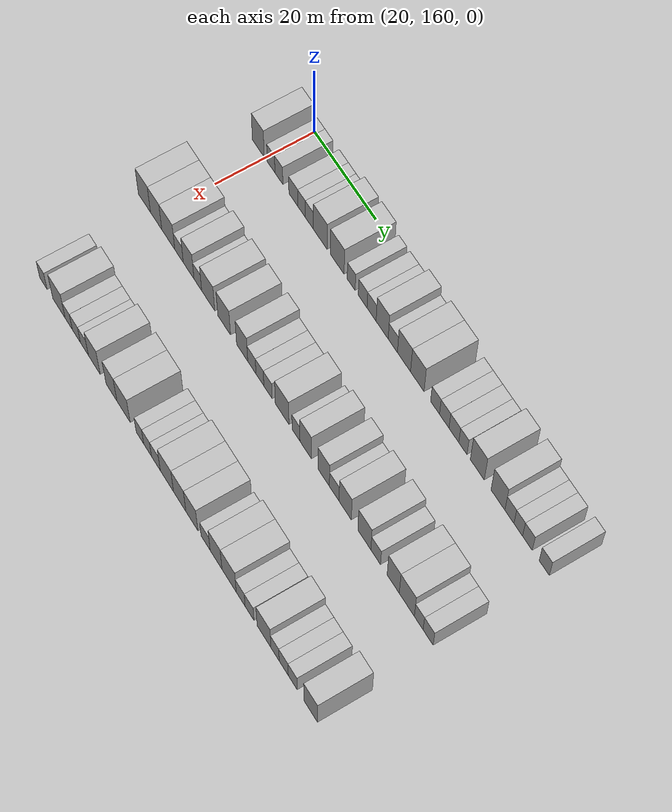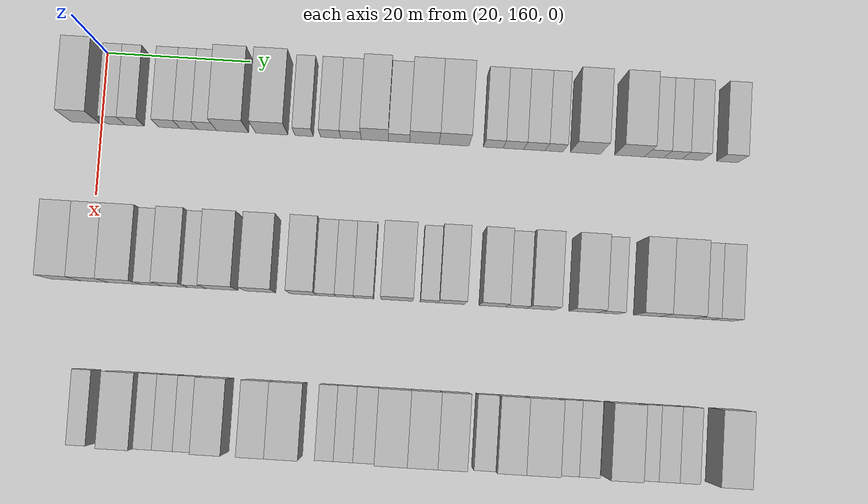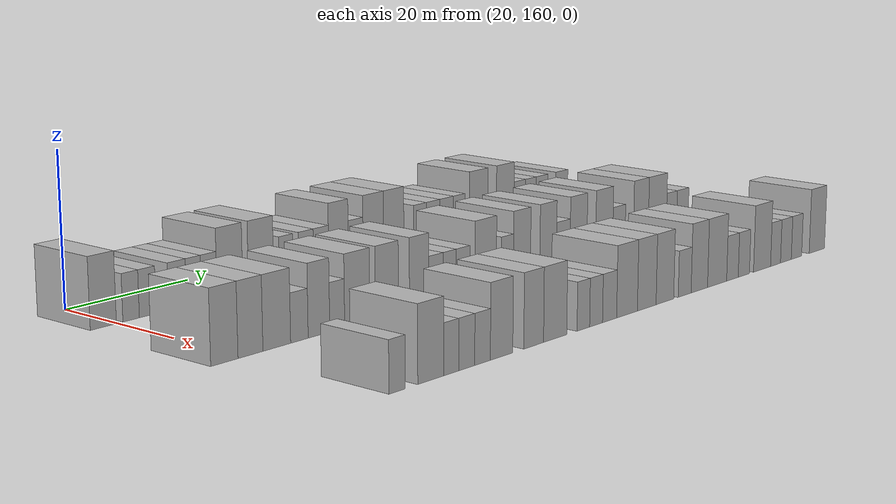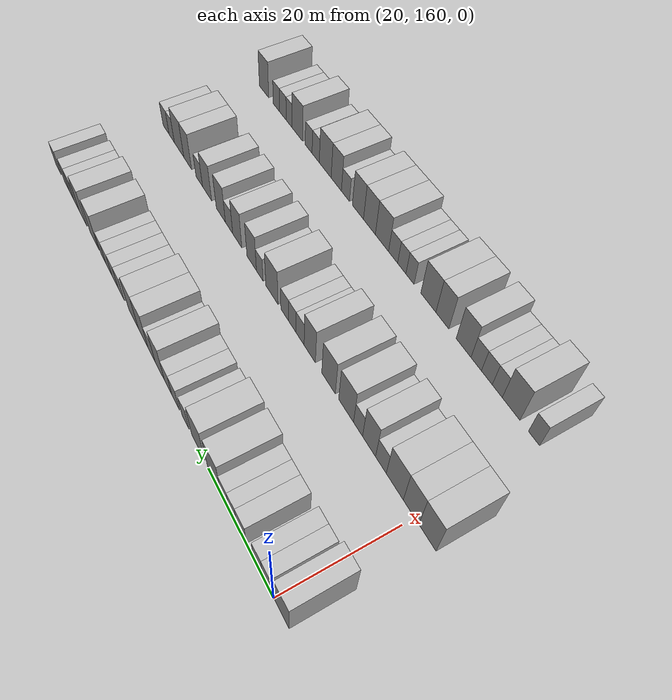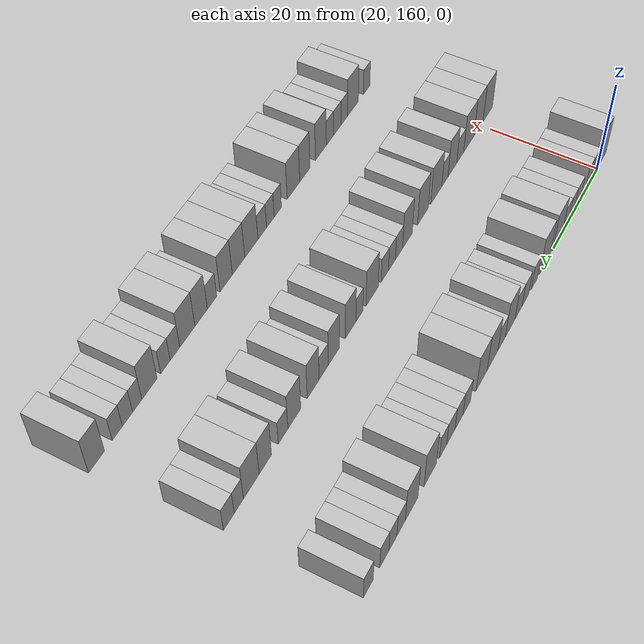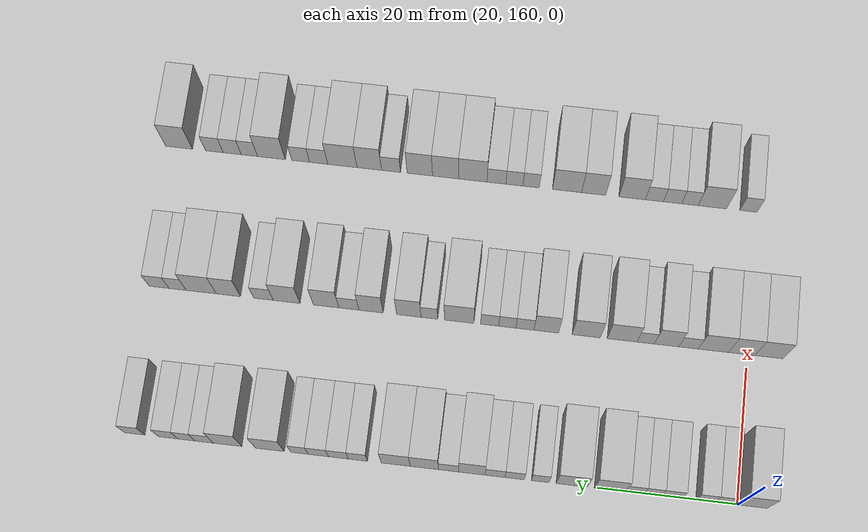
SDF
<sdf version="1.6">
 <world name="default">
  <model name="building_101">
   <static>1</static>
   <pose>25.0000 157.7586 0 0.000000 0.000000 0.000000</pose>
   <link name="link">
    <pose>0 0 4.50 0 0 0</pose>
    <collision name="collision"><geometry><box><size>10.0000 3.9727 9.0000</size></box></geometry></collision>
    <visual name="visual">
     <cast_shadows>0</cast_shadows>
     <geometry><box><size>10.0000 3.9727 9.0000</size></box></geometry>
     <material>
      <script>
       <uri>model://HANNAS_wall/materials/scripts</uri>
       <uri>model://HANNAS_wall/materials/textures</uri>
       <name>vrc/HANNAS_wall</name>
      </script>
     </material>
    </visual>
   </link>
  </model>
  <model name="building_102">
   <static>1</static>
   <pose>25.0000 162.0350 0 0.000000 0.000000 0.000000</pose>
   <link name="link">
    <pose>0 0 3.00 0 0 0</pose>
    <collision name="collision"><geometry><box><size>10.0000 2.5802 6.0000</size></box></geometry></collision>
    <visual name="visual">
     <cast_shadows>0</cast_shadows>
     <geometry><box><size>10.0000 2.5802 6.0000</size></box></geometry>
     <material>
      <script>
       <uri>model://HANNAS_wall/materials/scripts</uri>
       <uri>model://HANNAS_wall/materials/textures</uri>
       <name>vrc/HANNAS_wall</name>
      </script>
     </material>
    </visual>
   </link>
  </model>
  <model name="building_103">
   <static>1</static>
   <pose>25.0000 164.6502 0 0.000000 0.000000 0.000000</pose>
   <link name="link">
    <pose>0 0 3.00 0 0 0</pose>
    <collision name="collision"><geometry><box><size>10.0000 2.6501 6.0000</size></box></geometry></collision>
    <visual name="visual">
     <cast_shadows>0</cast_shadows>
     <geometry><box><size>10.0000 2.6501 6.0000</size></box></geometry>
     <material>
      <script>
       <uri>model://HANNAS_wall/materials/scripts</uri>
       <uri>model://HANNAS_wall/materials/textures</uri>
       <name>vrc/HANNAS_wall</name>
      </script>
     </material>
    </visual>
   </link>
  </model>
  <model name="building_104">
   <static>1</static>
   <pose>25.0000 169.4559 0 0.000000 0.000000 0.000000</pose>
   <link name="link">
    <pose>0 0 3.00 0 0 0</pose>
    <collision name="collision"><geometry><box><size>10.0000 2.9613 6.0000</size></box></geometry></collision>
    <visual name="visual">
     <cast_shadows>0</cast_shadows>
     <geometry><box><size>10.0000 2.9613 6.0000</size></box></geometry>
     <material>
      <script>
       <uri>model://HANNAS_wall/materials/scripts</uri>
       <uri>model://HANNAS_wall/materials/textures</uri>
       <name>vrc/HANNAS_wall</name>
      </script>
     </material>
    </visual>
   </link>
  </model>
  <model name="building_105">
   <static>1</static>
   <pose>25.0000 172.1730 0 0.000000 0.000000 0.000000</pose>
   <link name="link">
    <pose>0 0 3.00 0 0 0</pose>
    <collision name="collision"><geometry><box><size>10.0000 2.4728 6.0000</size></box></geometry></collision>
    <visual name="visual">
     <cast_shadows>0</cast_shadows>
     <geometry><box><size>10.0000 2.4728 6.0000</size></box></geometry>
     <material>
      <script>
       <uri>model://HANNAS_wall/materials/scripts</uri>
       <uri>model://HANNAS_wall/materials/textures</uri>
       <name>vrc/HANNAS_wall</name>
      </script>
     </material>
    </visual>
   </link>
  </model>
  <model name="building_106">
   <static>1</static>
   <pose>25.0000 174.7276 0 0.000000 0.000000 0.000000</pose>
   <link name="link">
    <pose>0 0 3.00 0 0 0</pose>
    <collision name="collision"><geometry><box><size>10.0000 2.6365 6.0000</size></box></geometry></collision>
    <visual name="visual">
     <cast_shadows>0</cast_shadows>
     <geometry><box><size>10.0000 2.6365 6.0000</size></box></geometry>
     <material>
      <script>
       <uri>model://HANNAS_wall/materials/scripts</uri>
       <uri>model://HANNAS_wall/materials/textures</uri>
       <name>vrc/HANNAS_wall</name>
      </script>
     </material>
    </visual>
   </link>
  </model>
  <model name="building_107">
   <static>1</static>
   <pose>25.0000 178.2667 0 0.000000 0.000000 0.000000</pose>
   <link name="link">
    <pose>0 0 4.50 0 0 0</pose>
    <collision name="collision"><geometry><box><size>10.0000 4.4417 9.0000</size></box></geometry></collision>
    <visual name="visual">
     <cast_shadows>0</cast_shadows>
     <geometry><box><size>10.0000 4.4417 9.0000</size></box></geometry>
     <material>
      <script>
       <uri>model://HANNAS_wall/materials/scripts</uri>
       <uri>model://HANNAS_wall/materials/textures</uri>
       <name>vrc/HANNAS_wall</name>
      </script>
     </material>
    </visual>
   </link>
  </model>
  <model name="building_108">
   <static>1</static>
   <pose>25.0000 183.7313 0 0.000000 0.000000 0.000000</pose>
   <link name="link">
    <pose>0 0 4.50 0 0 0</pose>
    <collision name="collision"><geometry><box><size>10.0000 4.4874 9.0000</size></box></geometry></collision>
    <visual name="visual">
     <cast_shadows>0</cast_shadows>
     <geometry><box><size>10.0000 4.4874 9.0000</size></box></geometry>
     <material>
      <script>
       <uri>model://HANNAS_wall/materials/scripts</uri>
       <uri>model://HANNAS_wall/materials/textures</uri>
       <name>vrc/HANNAS_wall</name>
      </script>
     </material>
    </visual>
   </link>
  </model>
  <model name="building_109">
   <static>1</static>
   <pose>25.0000 188.2489 0 0.000000 0.000000 0.000000</pose>
   <link name="link">
    <pose>0 0 3.00 0 0 0</pose>
    <collision name="collision"><geometry><box><size>10.0000 2.5479 6.0000</size></box></geometry></collision>
    <visual name="visual">
     <cast_shadows>0</cast_shadows>
     <geometry><box><size>10.0000 2.5479 6.0000</size></box></geometry>
     <material>
      <script>
       <uri>model://HANNAS_wall/materials/scripts</uri>
       <uri>model://HANNAS_wall/materials/textures</uri>
       <name>vrc/HANNAS_wall</name>
      </script>
     </material>
    </visual>
   </link>
  </model>
  <model name="building_110">
   <static>1</static>
   <pose>25.0000 191.9222 0 0.000000 0.000000 0.000000</pose>
   <link name="link">
    <pose>0 0 3.00 0 0 0</pose>
    <collision name="collision"><geometry><box><size>10.0000 2.7987 6.0000</size></box></geometry></collision>
    <visual name="visual">
     <cast_shadows>0</cast_shadows>
     <geometry><box><size>10.0000 2.7987 6.0000</size></box></geometry>
     <material>
      <script>
       <uri>model://HANNAS_wall/materials/scripts</uri>
       <uri>model://HANNAS_wall/materials/textures</uri>
       <name>vrc/HANNAS_wall</name>
      </script>
     </material>
    </visual>
   </link>
  </model>
  <model name="building_111">
   <static>1</static>
   <pose>25.0000 194.7516 0 0.000000 0.000000 0.000000</pose>
   <link name="link">
    <pose>0 0 3.00 0 0 0</pose>
    <collision name="collision"><geometry><box><size>10.0000 2.8600 6.0000</size></box></geometry></collision>
    <visual name="visual">
     <cast_shadows>0</cast_shadows>
     <geometry><box><size>10.0000 2.8600 6.0000</size></box></geometry>
     <material>
      <script>
       <uri>model://HANNAS_wall/materials/scripts</uri>
       <uri>model://HANNAS_wall/materials/textures</uri>
       <name>vrc/HANNAS_wall</name>
      </script>
     </material>
    </visual>
   </link>
  </model>
  <model name="building_112">
   <static>1</static>
   <pose>25.0000 198.0817 0 0.000000 0.000000 0.000000</pose>
   <link name="link">
    <pose>0 0 4.50 0 0 0</pose>
    <collision name="collision"><geometry><box><size>10.0000 3.8003 9.0000</size></box></geometry></collision>
    <visual name="visual">
     <cast_shadows>0</cast_shadows>
     <geometry><box><size>10.0000 3.8003 9.0000</size></box></geometry>
     <material>
      <script>
       <uri>model://HANNAS_wall/materials/scripts</uri>
       <uri>model://HANNAS_wall/materials/textures</uri>
       <name>vrc/HANNAS_wall</name>
      </script>
     </material>
    </visual>
   </link>
  </model>
  <model name="building_113">
   <static>1</static>
   <pose>25.0000 201.4371 0 0.000000 0.000000 0.000000</pose>
   <link name="link">
    <pose>0 0 3.00 0 0 0</pose>
    <collision name="collision"><geometry><box><size>10.0000 2.9106 6.0000</size></box></geometry></collision>
    <visual name="visual">
     <cast_shadows>0</cast_shadows>
     <geometry><box><size>10.0000 2.9106 6.0000</size></box></geometry>
     <material>
      <script>
       <uri>model://HANNAS_wall/materials/scripts</uri>
       <uri>model://HANNAS_wall/materials/textures</uri>
       <name>vrc/HANNAS_wall</name>
      </script>
     </material>
    </visual>
   </link>
  </model>
  <model name="building_114">
   <static>1</static>
   <pose>25.0000 204.9278 0 0.000000 0.000000 0.000000</pose>
   <link name="link">
    <pose>0 0 4.50 0 0 0</pose>
    <collision name="collision"><geometry><box><size>10.0000 4.0708 9.0000</size></box></geometry></collision>
    <visual name="visual">
     <cast_shadows>0</cast_shadows>
     <geometry><box><size>10.0000 4.0708 9.0000</size></box></geometry>
     <material>
      <script>
       <uri>model://HANNAS_wall/materials/scripts</uri>
       <uri>model://HANNAS_wall/materials/textures</uri>
       <name>vrc/HANNAS_wall</name>
      </script>
     </material>
    </visual>
   </link>
  </model>
  <model name="building_115">
   <static>1</static>
   <pose>25.0000 209.0566 0 0.000000 0.000000 0.000000</pose>
   <link name="link">
    <pose>0 0 4.50 0 0 0</pose>
    <collision name="collision"><geometry><box><size>10.0000 4.1867 9.0000</size></box></geometry></collision>
    <visual name="visual">
     <cast_shadows>0</cast_shadows>
     <geometry><box><size>10.0000 4.1867 9.0000</size></box></geometry>
     <material>
      <script>
       <uri>model://HANNAS_wall/materials/scripts</uri>
       <uri>model://HANNAS_wall/materials/textures</uri>
       <name>vrc/HANNAS_wall</name>
      </script>
     </material>
    </visual>
   </link>
  </model>
  <model name="building_116">
   <static>1</static>
   <pose>25.0000 214.5141 0 0.000000 0.000000 0.000000</pose>
   <link name="link">
    <pose>0 0 3.00 0 0 0</pose>
    <collision name="collision"><geometry><box><size>10.0000 2.7284 6.0000</size></box></geometry></collision>
    <visual name="visual">
     <cast_shadows>0</cast_shadows>
     <geometry><box><size>10.0000 2.7284 6.0000</size></box></geometry>
     <material>
      <script>
       <uri>model://HANNAS_wall/materials/scripts</uri>
       <uri>model://HANNAS_wall/materials/textures</uri>
       <name>vrc/HANNAS_wall</name>
      </script>
     </material>
    </visual>
   </link>
  </model>
  <model name="building_117">
   <static>1</static>
   <pose>25.0000 217.3220 0 0.000000 0.000000 0.000000</pose>
   <link name="link">
    <pose>0 0 3.00 0 0 0</pose>
    <collision name="collision"><geometry><box><size>10.0000 2.8875 6.0000</size></box></geometry></collision>
    <visual name="visual">
     <cast_shadows>0</cast_shadows>
     <geometry><box><size>10.0000 2.8875 6.0000</size></box></geometry>
     <material>
      <script>
       <uri>model://HANNAS_wall/materials/scripts</uri>
       <uri>model://HANNAS_wall/materials/textures</uri>
       <name>vrc/HANNAS_wall</name>
      </script>
     </material>
    </visual>
   </link>
  </model>
  <model name="building_118">
   <static>1</static>
   <pose>25.0000 220.2433 0 0.000000 0.000000 0.000000</pose>
   <link name="link">
    <pose>0 0 3.00 0 0 0</pose>
    <collision name="collision"><geometry><box><size>10.0000 2.9550 6.0000</size></box></geometry></collision>
    <visual name="visual">
     <cast_shadows>0</cast_shadows>
     <geometry><box><size>10.0000 2.9550 6.0000</size></box></geometry>
     <material>
      <script>
       <uri>model://HANNAS_wall/materials/scripts</uri>
       <uri>model://HANNAS_wall/materials/textures</uri>
       <name>vrc/HANNAS_wall</name>
      </script>
     </material>
    </visual>
   </link>
  </model>
  <model name="building_119">
   <static>1</static>
   <pose>25.0000 222.9664 0 0.000000 0.000000 0.000000</pose>
   <link name="link">
    <pose>0 0 3.00 0 0 0</pose>
    <collision name="collision"><geometry><box><size>10.0000 2.4912 6.0000</size></box></geometry></collision>
    <visual name="visual">
     <cast_shadows>0</cast_shadows>
     <geometry><box><size>10.0000 2.4912 6.0000</size></box></geometry>
     <material>
      <script>
       <uri>model://HANNAS_wall/materials/scripts</uri>
       <uri>model://HANNAS_wall/materials/textures</uri>
       <name>vrc/HANNAS_wall</name>
      </script>
     </material>
    </visual>
   </link>
  </model>
  <model name="building_120">
   <static>1</static>
   <pose>25.0000 227.3016 0 0.000000 0.000000 0.000000</pose>
   <link name="link">
    <pose>0 0 4.50 0 0 0</pose>
    <collision name="collision"><geometry><box><size>10.0000 4.1792 9.0000</size></box></geometry></collision>
    <visual name="visual">
     <cast_shadows>0</cast_shadows>
     <geometry><box><size>10.0000 4.1792 9.0000</size></box></geometry>
     <material>
      <script>
       <uri>model://HANNAS_wall/materials/scripts</uri>
       <uri>model://HANNAS_wall/materials/textures</uri>
       <name>vrc/HANNAS_wall</name>
      </script>
     </material>
    </visual>
   </link>
  </model>
  <model name="building_121">
   <static>1</static>
   <pose>25.0000 233.4459 0 0.000000 0.000000 0.000000</pose>
   <link name="link">
    <pose>0 0 4.50 0 0 0</pose>
    <collision name="collision"><geometry><box><size>10.0000 4.1093 9.0000</size></box></geometry></collision>
    <visual name="visual">
     <cast_shadows>0</cast_shadows>
     <geometry><box><size>10.0000 4.1093 9.0000</size></box></geometry>
     <material>
      <script>
       <uri>model://HANNAS_wall/materials/scripts</uri>
       <uri>model://HANNAS_wall/materials/textures</uri>
       <name>vrc/HANNAS_wall</name>
      </script>
     </material>
    </visual>
   </link>
  </model>
  <model name="building_122">
   <static>1</static>
   <pose>25.0000 236.8376 0 0.000000 0.000000 0.000000</pose>
   <link name="link">
    <pose>0 0 3.00 0 0 0</pose>
    <collision name="collision"><geometry><box><size>10.0000 2.6743 6.0000</size></box></geometry></collision>
    <visual name="visual">
     <cast_shadows>0</cast_shadows>
     <geometry><box><size>10.0000 2.6743 6.0000</size></box></geometry>
     <material>
      <script>
       <uri>model://HANNAS_wall/materials/scripts</uri>
       <uri>model://HANNAS_wall/materials/textures</uri>
       <name>vrc/HANNAS_wall</name>
      </script>
     </material>
    </visual>
   </link>
  </model>
  <model name="building_123">
   <static>1</static>
   <pose>25.0000 239.4373 0 0.000000 0.000000 0.000000</pose>
   <link name="link">
    <pose>0 0 3.00 0 0 0</pose>
    <collision name="collision"><geometry><box><size>10.0000 2.5251 6.0000</size></box></geometry></collision>
    <visual name="visual">
     <cast_shadows>0</cast_shadows>
     <geometry><box><size>10.0000 2.5251 6.0000</size></box></geometry>
     <material>
      <script>
       <uri>model://HANNAS_wall/materials/scripts</uri>
       <uri>model://HANNAS_wall/materials/textures</uri>
       <name>vrc/HANNAS_wall</name>
      </script>
     </material>
    </visual>
   </link>
  </model>
  <model name="building_124">
   <static>1</static>
   <pose>25.0000 242.1159 0 0.000000 0.000000 0.000000</pose>
   <link name="link">
    <pose>0 0 3.00 0 0 0</pose>
    <collision name="collision"><geometry><box><size>10.0000 2.8319 6.0000</size></box></geometry></collision>
    <visual name="visual">
     <cast_shadows>0</cast_shadows>
     <geometry><box><size>10.0000 2.8319 6.0000</size></box></geometry>
     <material>
      <script>
       <uri>model://HANNAS_wall/materials/scripts</uri>
       <uri>model://HANNAS_wall/materials/textures</uri>
       <name>vrc/HANNAS_wall</name>
      </script>
     </material>
    </visual>
   </link>
  </model>
  <model name="building_125">
   <static>1</static>
   <pose>25.0000 247.0064 0 0.000000 0.000000 0.000000</pose>
   <link name="link">
    <pose>0 0 3.00 0 0 0</pose>
    <collision name="collision"><geometry><box><size>10.0000 2.9490 6.0000</size></box></geometry></collision>
    <visual name="visual">
     <cast_shadows>0</cast_shadows>
     <geometry><box><size>10.0000 2.9490 6.0000</size></box></geometry>
     <material>
      <script>
       <uri>model://HANNAS_wall/materials/scripts</uri>
       <uri>model://HANNAS_wall/materials/textures</uri>
       <name>vrc/HANNAS_wall</name>
      </script>
     </material>
    </visual>
   </link>
  </model>
  <model name="building_221">
   <static>1</static>
   <pose>47.0000 156.8864 0 0.000000 0.000000 0.000000</pose>
   <link name="link">
    <pose>0 0 4.50 0 0 0</pose>
    <collision name="collision"><geometry><box><size>10.0000 4.1381 9.0000</size></box></geometry></collision>
    <visual name="visual">
     <cast_shadows>0</cast_shadows>
     <geometry><box><size>10.0000 4.1381 9.0000</size></box></geometry>
     <material>
      <script>
       <uri>model://HANNAS_wall/materials/scripts</uri>
       <uri>model://HANNAS_wall/materials/textures</uri>
       <name>vrc/HANNAS_wall</name>
      </script>
     </material>
    </visual>
   </link>
  </model>
  <model name="building_222">
   <static>1</static>
   <pose>47.0000 160.8949 0 0.000000 0.000000 0.000000</pose>
   <link name="link">
    <pose>0 0 4.50 0 0 0</pose>
    <collision name="collision"><geometry><box><size>10.0000 3.8789 9.0000</size></box></geometry></collision>
    <visual name="visual">
     <cast_shadows>0</cast_shadows>
     <geometry><box><size>10.0000 3.8789 9.0000</size></box></geometry>
     <material>
      <script>
       <uri>model://HANNAS_wall/materials/scripts</uri>
       <uri>model://HANNAS_wall/materials/textures</uri>
       <name>vrc/HANNAS_wall</name>
      </script>
     </material>
    </visual>
   </link>
  </model>
  <model name="building_223">
   <static>1</static>
   <pose>47.0000 165.0486 0 0.000000 0.000000 0.000000</pose>
   <link name="link">
    <pose>0 0 4.50 0 0 0</pose>
    <collision name="collision"><geometry><box><size>10.0000 4.4285 9.0000</size></box></geometry></collision>
    <visual name="visual">
     <cast_shadows>0</cast_shadows>
     <geometry><box><size>10.0000 4.4285 9.0000</size></box></geometry>
     <material>
      <script>
       <uri>model://HANNAS_wall/materials/scripts</uri>
       <uri>model://HANNAS_wall/materials/textures</uri>
       <name>vrc/HANNAS_wall</name>
      </script>
     </material>
    </visual>
   </link>
  </model>
  <model name="building_224">
   <static>1</static>
   <pose>47.0000 168.6947 0 0.000000 0.000000 0.000000</pose>
   <link name="link">
    <pose>0 0 3.00 0 0 0</pose>
    <collision name="collision"><geometry><box><size>10.0000 2.8638 6.0000</size></box></geometry></collision>
    <visual name="visual">
     <cast_shadows>0</cast_shadows>
     <geometry><box><size>10.0000 2.8638 6.0000</size></box></geometry>
     <material>
      <script>
       <uri>model://HANNAS_wall/materials/scripts</uri>
       <uri>model://HANNAS_wall/materials/textures</uri>
       <name>vrc/HANNAS_wall</name>
      </script>
     </material>
    </visual>
   </link>
  </model>
  <model name="building_225">
   <static>1</static>
   <pose>47.0000 171.9299 0 0.000000 0.000000 0.000000</pose>
   <link name="link">
    <pose>0 0 4.50 0 0 0</pose>
    <collision name="collision"><geometry><box><size>10.0000 3.6066 9.0000</size></box></geometry></collision>
    <visual name="visual">
     <cast_shadows>0</cast_shadows>
     <geometry><box><size>10.0000 3.6066 9.0000</size></box></geometry>
     <material>
      <script>
       <uri>model://HANNAS_wall/materials/scripts</uri>
       <uri>model://HANNAS_wall/materials/textures</uri>
       <name>vrc/HANNAS_wall</name>
      </script>
     </material>
    </visual>
   </link>
  </model>
  <model name="building_226">
   <static>1</static>
   <pose>47.0000 175.0046 0 0.000000 0.000000 0.000000</pose>
   <link name="link">
    <pose>0 0 3.00 0 0 0</pose>
    <collision name="collision"><geometry><box><size>10.0000 2.5428 6.0000</size></box></geometry></collision>
    <visual name="visual">
     <cast_shadows>0</cast_shadows>
     <geometry><box><size>10.0000 2.5428 6.0000</size></box></geometry>
     <material>
      <script>
       <uri>model://HANNAS_wall/materials/scripts</uri>
       <uri>model://HANNAS_wall/materials/textures</uri>
       <name>vrc/HANNAS_wall</name>
      </script>
     </material>
    </visual>
   </link>
  </model>
  <model name="building_227">
   <static>1</static>
   <pose>47.0000 178.4618 0 0.000000 0.000000 0.000000</pose>
   <link name="link">
    <pose>0 0 4.50 0 0 0</pose>
    <collision name="collision"><geometry><box><size>10.0000 4.3716 9.0000</size></box></geometry></collision>
    <visual name="visual">
     <cast_shadows>0</cast_shadows>
     <geometry><box><size>10.0000 4.3716 9.0000</size></box></geometry>
     <material>
      <script>
       <uri>model://HANNAS_wall/materials/scripts</uri>
       <uri>model://HANNAS_wall/materials/textures</uri>
       <name>vrc/HANNAS_wall</name>
      </script>
     </material>
    </visual>
   </link>
  </model>
  <model name="building_228">
   <static>1</static>
   <pose>47.0000 183.7325 0 0.000000 0.000000 0.000000</pose>
   <link name="link">
    <pose>0 0 4.50 0 0 0</pose>
    <collision name="collision"><geometry><box><size>10.0000 4.1698 9.0000</size></box></geometry></collision>
    <visual name="visual">
     <cast_shadows>0</cast_shadows>
     <geometry><box><size>10.0000 4.1698 9.0000</size></box></geometry>
     <material>
      <script>
       <uri>model://HANNAS_wall/materials/scripts</uri>
       <uri>model://HANNAS_wall/materials/textures</uri>
       <name>vrc/HANNAS_wall</name>
      </script>
     </material>
    </visual>
   </link>
  </model>
  <model name="building_229">
   <static>1</static>
   <pose>47.0000 189.6320 0 0.000000 0.000000 0.000000</pose>
   <link name="link">
    <pose>0 0 4.50 0 0 0</pose>
    <collision name="collision"><geometry><box><size>10.0000 3.6291 9.0000</size></box></geometry></collision>
    <visual name="visual">
     <cast_shadows>0</cast_shadows>
     <geometry><box><size>10.0000 3.6291 9.0000</size></box></geometry>
     <material>
      <script>
       <uri>model://HANNAS_wall/materials/scripts</uri>
       <uri>model://HANNAS_wall/materials/textures</uri>
       <name>vrc/HANNAS_wall</name>
      </script>
     </material>
    </visual>
   </link>
  </model>
  <model name="building_230">
   <static>1</static>
   <pose>47.0000 192.7824 0 0.000000 0.000000 0.000000</pose>
   <link name="link">
    <pose>0 0 3.00 0 0 0</pose>
    <collision name="collision"><geometry><box><size>10.0000 2.6718 6.0000</size></box></geometry></collision>
    <visual name="visual">
     <cast_shadows>0</cast_shadows>
     <geometry><box><size>10.0000 2.6718 6.0000</size></box></geometry>
     <material>
      <script>
       <uri>model://HANNAS_wall/materials/scripts</uri>
       <uri>model://HANNAS_wall/materials/textures</uri>
       <name>vrc/HANNAS_wall</name>
      </script>
     </material>
    </visual>
   </link>
  </model>
  <model name="building_231">
   <static>1</static>
   <pose>47.0000 195.3844 0 0.000000 0.000000 0.000000</pose>
   <link name="link">
    <pose>0 0 3.00 0 0 0</pose>
    <collision name="collision"><geometry><box><size>10.0000 2.5320 6.0000</size></box></geometry></collision>
    <visual name="visual">
     <cast_shadows>0</cast_shadows>
     <geometry><box><size>10.0000 2.5320 6.0000</size></box></geometry>
     <material>
      <script>
       <uri>model://HANNAS_wall/materials/scripts</uri>
       <uri>model://HANNAS_wall/materials/textures</uri>
       <name>vrc/HANNAS_wall</name>
      </script>
     </material>
    </visual>
   </link>
  </model>
  <model name="building_232">
   <static>1</static>
   <pose>47.0000 197.9877 0 0.000000 0.000000 0.000000</pose>
   <link name="link">
    <pose>0 0 3.00 0 0 0</pose>
    <collision name="collision"><geometry><box><size>10.0000 2.6748 6.0000</size></box></geometry></collision>
    <visual name="visual">
     <cast_shadows>0</cast_shadows>
     <geometry><box><size>10.0000 2.6748 6.0000</size></box></geometry>
     <material>
      <script>
       <uri>model://HANNAS_wall/materials/scripts</uri>
       <uri>model://HANNAS_wall/materials/textures</uri>
       <name>vrc/HANNAS_wall</name>
      </script>
     </material>
    </visual>
   </link>
  </model>
  <model name="building_233">
   <static>1</static>
   <pose>47.0000 202.5046 0 0.000000 0.000000 0.000000</pose>
   <link name="link">
    <pose>0 0 4.50 0 0 0</pose>
    <collision name="collision"><geometry><box><size>10.0000 4.3589 9.0000</size></box></geometry></collision>
    <visual name="visual">
     <cast_shadows>0</cast_shadows>
     <geometry><box><size>10.0000 4.3589 9.0000</size></box></geometry>
     <material>
      <script>
       <uri>model://HANNAS_wall/materials/scripts</uri>
       <uri>model://HANNAS_wall/materials/textures</uri>
       <name>vrc/HANNAS_wall</name>
      </script>
     </material>
    </visual>
   </link>
  </model>
  <model name="building_234">
   <static>1</static>
   <pose>47.0000 206.9203 0 0.000000 0.000000 0.000000</pose>
   <link name="link">
    <pose>0 0 3.00 0 0 0</pose>
    <collision name="collision"><geometry><box><size>10.0000 2.4726 6.0000</size></box></geometry></collision>
    <visual name="visual">
     <cast_shadows>0</cast_shadows>
     <geometry><box><size>10.0000 2.4726 6.0000</size></box></geometry>
     <material>
      <script>
       <uri>model://HANNAS_wall/materials/scripts</uri>
       <uri>model://HANNAS_wall/materials/textures</uri>
       <name>vrc/HANNAS_wall</name>
      </script>
     </material>
    </visual>
   </link>
  </model>
  <model name="building_235">
   <static>1</static>
   <pose>47.0000 209.9609 0 0.000000 0.000000 0.000000</pose>
   <link name="link">
    <pose>0 0 4.50 0 0 0</pose>
    <collision name="collision"><geometry><box><size>10.0000 3.6086 9.0000</size></box></geometry></collision>
    <visual name="visual">
     <cast_shadows>0</cast_shadows>
     <geometry><box><size>10.0000 3.6086 9.0000</size></box></geometry>
     <material>
      <script>
       <uri>model://HANNAS_wall/materials/scripts</uri>
       <uri>model://HANNAS_wall/materials/textures</uri>
       <name>vrc/HANNAS_wall</name>
      </script>
     </material>
    </visual>
   </link>
  </model>
  <model name="building_236">
   <static>1</static>
   <pose>47.0000 215.5670 0 0.000000 0.000000 0.000000</pose>
   <link name="link">
    <pose>0 0 4.50 0 0 0</pose>
    <collision name="collision"><geometry><box><size>10.0000 3.6035 9.0000</size></box></geometry></collision>
    <visual name="visual">
     <cast_shadows>0</cast_shadows>
     <geometry><box><size>10.0000 3.6035 9.0000</size></box></geometry>
     <material>
      <script>
       <uri>model://HANNAS_wall/materials/scripts</uri>
       <uri>model://HANNAS_wall/materials/textures</uri>
       <name>vrc/HANNAS_wall</name>
      </script>
     </material>
    </visual>
   </link>
  </model>
  <model name="building_237">
   <static>1</static>
   <pose>47.0000 218.8610 0 0.000000 0.000000 0.000000</pose>
   <link name="link">
    <pose>0 0 3.00 0 0 0</pose>
    <collision name="collision"><geometry><box><size>10.0000 2.9845 6.0000</size></box></geometry></collision>
    <visual name="visual">
     <cast_shadows>0</cast_shadows>
     <geometry><box><size>10.0000 2.9845 6.0000</size></box></geometry>
     <material>
      <script>
       <uri>model://HANNAS_wall/materials/scripts</uri>
       <uri>model://HANNAS_wall/materials/textures</uri>
       <name>vrc/HANNAS_wall</name>
      </script>
     </material>
    </visual>
   </link>
  </model>
  <model name="building_238">
   <static>1</static>
   <pose>47.0000 222.2471 0 0.000000 0.000000 0.000000</pose>
   <link name="link">
    <pose>0 0 4.50 0 0 0</pose>
    <collision name="collision"><geometry><box><size>10.0000 3.7878 9.0000</size></box></geometry></collision>
    <visual name="visual">
     <cast_shadows>0</cast_shadows>
     <geometry><box><size>10.0000 3.7878 9.0000</size></box></geometry>
     <material>
      <script>
       <uri>model://HANNAS_wall/materials/scripts</uri>
       <uri>model://HANNAS_wall/materials/textures</uri>
       <name>vrc/HANNAS_wall</name>
      </script>
     </material>
    </visual>
   </link>
  </model>
  <model name="building_239">
   <static>1</static>
   <pose>47.0000 228.1265 0 0.000000 0.000000 0.000000</pose>
   <link name="link">
    <pose>0 0 4.50 0 0 0</pose>
    <collision name="collision"><geometry><box><size>10.0000 3.9709 9.0000</size></box></geometry></collision>
    <visual name="visual">
     <cast_shadows>0</cast_shadows>
     <geometry><box><size>10.0000 3.9709 9.0000</size></box></geometry>
     <material>
      <script>
       <uri>model://HANNAS_wall/materials/scripts</uri>
       <uri>model://HANNAS_wall/materials/textures</uri>
       <name>vrc/HANNAS_wall</name>
      </script>
     </material>
    </visual>
   </link>
  </model>
  <model name="building_240">
   <static>1</static>
   <pose>47.0000 231.5722 0 0.000000 0.000000 0.000000</pose>
   <link name="link">
    <pose>0 0 3.00 0 0 0</pose>
    <collision name="collision"><geometry><box><size>10.0000 2.9207 6.0000</size></box></geometry></collision>
    <visual name="visual">
     <cast_shadows>0</cast_shadows>
     <geometry><box><size>10.0000 2.9207 6.0000</size></box></geometry>
     <material>
      <script>
       <uri>model://HANNAS_wall/materials/scripts</uri>
       <uri>model://HANNAS_wall/materials/textures</uri>
       <name>vrc/HANNAS_wall</name>
      </script>
     </material>
    </visual>
   </link>
  </model>
  <model name="building_241">
   <static>1</static>
   <pose>47.0000 236.8432 0 0.000000 0.000000 0.000000</pose>
   <link name="link">
    <pose>0 0 4.50 0 0 0</pose>
    <collision name="collision"><geometry><box><size>10.0000 3.6212 9.0000</size></box></geometry></collision>
    <visual name="visual">
     <cast_shadows>0</cast_shadows>
     <geometry><box><size>10.0000 3.6212 9.0000</size></box></geometry>
     <material>
      <script>
       <uri>model://HANNAS_wall/materials/scripts</uri>
       <uri>model://HANNAS_wall/materials/textures</uri>
       <name>vrc/HANNAS_wall</name>
      </script>
     </material>
    </visual>
   </link>
  </model>
  <model name="building_242">
   <static>1</static>
   <pose>47.0000 240.9004 0 0.000000 0.000000 0.000000</pose>
   <link name="link">
    <pose>0 0 4.50 0 0 0</pose>
    <collision name="collision"><geometry><box><size>10.0000 4.4932 9.0000</size></box></geometry></collision>
    <visual name="visual">
     <cast_shadows>0</cast_shadows>
     <geometry><box><size>10.0000 4.4932 9.0000</size></box></geometry>
     <material>
      <script>
       <uri>model://HANNAS_wall/materials/scripts</uri>
       <uri>model://HANNAS_wall/materials/textures</uri>
       <name>vrc/HANNAS_wall</name>
      </script>
     </material>
    </visual>
   </link>
  </model>
  <model name="building_243">
   <static>1</static>
   <pose>47.0000 244.4435 0 0.000000 0.000000 0.000000</pose>
   <link name="link">
    <pose>0 0 3.00 0 0 0</pose>
    <collision name="collision"><geometry><box><size>10.0000 2.5932 6.0000</size></box></geometry></collision>
    <visual name="visual">
     <cast_shadows>0</cast_shadows>
     <geometry><box><size>10.0000 2.5932 6.0000</size></box></geometry>
     <material>
      <script>
       <uri>model://HANNAS_wall/materials/scripts</uri>
       <uri>model://HANNAS_wall/materials/textures</uri>
       <name>vrc/HANNAS_wall</name>
      </script>
     </material>
    </visual>
   </link>
  </model>
  <model name="building_244">
   <static>1</static>
   <pose>47.0000 247.2238 0 0.000000 0.000000 0.000000</pose>
   <link name="link">
    <pose>0 0 3.00 0 0 0</pose>
    <collision name="collision"><geometry><box><size>10.0000 2.9674 6.0000</size></box></geometry></collision>
    <visual name="visual">
     <cast_shadows>0</cast_shadows>
     <geometry><box><size>10.0000 2.9674 6.0000</size></box></geometry>
     <material>
      <script>
       <uri>model://HANNAS_wall/materials/scripts</uri>
       <uri>model://HANNAS_wall/materials/textures</uri>
       <name>vrc/HANNAS_wall</name>
      </script>
     </material>
    </visual>
   </link>
  </model>
  <model name="building_342">
   <static>1</static>
   <pose>69.0000 161.3704 0 0.000000 0.000000 0.000000</pose>
   <link name="link">
    <pose>0 0 3.00 0 0 0</pose>
    <collision name="collision"><geometry><box><size>10.0000 2.5858 6.0000</size></box></geometry></collision>
    <visual name="visual">
     <cast_shadows>0</cast_shadows>
     <geometry><box><size>10.0000 2.5858 6.0000</size></box></geometry>
     <material>
      <script>
       <uri>model://HANNAS_wall/materials/scripts</uri>
       <uri>model://HANNAS_wall/materials/textures</uri>
       <name>vrc/HANNAS_wall</name>
      </script>
     </material>
    </visual>
   </link>
  </model>
  <model name="building_343">
   <static>1</static>
   <pose>69.0000 166.8011 0 0.000000 0.000000 0.000000</pose>
   <link name="link">
    <pose>0 0 4.50 0 0 0</pose>
    <collision name="collision"><geometry><box><size>10.0000 4.2757 9.0000</size></box></geometry></collision>
    <visual name="visual">
     <cast_shadows>0</cast_shadows>
     <geometry><box><size>10.0000 4.2757 9.0000</size></box></geometry>
     <material>
      <script>
       <uri>model://HANNAS_wall/materials/scripts</uri>
       <uri>model://HANNAS_wall/materials/textures</uri>
       <name>vrc/HANNAS_wall</name>
      </script>
     </material>
    </visual>
   </link>
  </model>
  <model name="building_344">
   <static>1</static>
   <pose>69.0000 170.1830 0 0.000000 0.000000 0.000000</pose>
   <link name="link">
    <pose>0 0 3.00 0 0 0</pose>
    <collision name="collision"><geometry><box><size>10.0000 2.4880 6.0000</size></box></geometry></collision>
    <visual name="visual">
     <cast_shadows>0</cast_shadows>
     <geometry><box><size>10.0000 2.4880 6.0000</size></box></geometry>
     <material>
      <script>
       <uri>model://HANNAS_wall/materials/scripts</uri>
       <uri>model://HANNAS_wall/materials/textures</uri>
       <name>vrc/HANNAS_wall</name>
      </script>
     </material>
    </visual>
   </link>
  </model>
  <model name="building_345">
   <static>1</static>
   <pose>69.0000 172.8072 0 0.000000 0.000000 0.000000</pose>
   <link name="link">
    <pose>0 0 3.00 0 0 0</pose>
    <collision name="collision"><geometry><box><size>10.0000 2.7605 6.0000</size></box></geometry></collision>
    <visual name="visual">
     <cast_shadows>0</cast_shadows>
     <geometry><box><size>10.0000 2.7605 6.0000</size></box></geometry>
     <material>
      <script>
       <uri>model://HANNAS_wall/materials/scripts</uri>
       <uri>model://HANNAS_wall/materials/textures</uri>
       <name>vrc/HANNAS_wall</name>
      </script>
     </material>
    </visual>
   </link>
  </model>
  <model name="building_346">
   <static>1</static>
   <pose>69.0000 175.5491 0 0.000000 0.000000 0.000000</pose>
   <link name="link">
    <pose>0 0 3.00 0 0 0</pose>
    <collision name="collision"><geometry><box><size>10.0000 2.7232 6.0000</size></box></geometry></collision>
    <visual name="visual">
     <cast_shadows>0</cast_shadows>
     <geometry><box><size>10.0000 2.7232 6.0000</size></box></geometry>
     <material>
      <script>
       <uri>model://HANNAS_wall/materials/scripts</uri>
       <uri>model://HANNAS_wall/materials/textures</uri>
       <name>vrc/HANNAS_wall</name>
      </script>
     </material>
    </visual>
   </link>
  </model>
  <model name="building_347">
   <static>1</static>
   <pose>69.0000 178.9050 0 0.000000 0.000000 0.000000</pose>
   <link name="link">
    <pose>0 0 4.50 0 0 0</pose>
    <collision name="collision"><geometry><box><size>10.0000 3.9886 9.0000</size></box></geometry></collision>
    <visual name="visual">
     <cast_shadows>0</cast_shadows>
     <geometry><box><size>10.0000 3.9886 9.0000</size></box></geometry>
     <material>
      <script>
       <uri>model://HANNAS_wall/materials/scripts</uri>
       <uri>model://HANNAS_wall/materials/textures</uri>
       <name>vrc/HANNAS_wall</name>
      </script>
     </material>
    </visual>
   </link>
  </model>
  <model name="building_348">
   <static>1</static>
   <pose>69.0000 184.7277 0 0.000000 0.000000 0.000000</pose>
   <link name="link">
    <pose>0 0 4.50 0 0 0</pose>
    <collision name="collision"><geometry><box><size>10.0000 3.6567 9.0000</size></box></geometry></collision>
    <visual name="visual">
     <cast_shadows>0</cast_shadows>
     <geometry><box><size>10.0000 3.6567 9.0000</size></box></geometry>
     <material>
      <script>
       <uri>model://HANNAS_wall/materials/scripts</uri>
       <uri>model://HANNAS_wall/materials/textures</uri>
       <name>vrc/HANNAS_wall</name>
      </script>
     </material>
    </visual>
   </link>
  </model>
  <model name="building_349">
   <static>1</static>
   <pose>69.0000 188.7548 0 0.000000 0.000000 0.000000</pose>
   <link name="link">
    <pose>0 0 4.50 0 0 0</pose>
    <collision name="collision"><geometry><box><size>10.0000 4.3976 9.0000</size></box></geometry></collision>
    <visual name="visual">
     <cast_shadows>0</cast_shadows>
     <geometry><box><size>10.0000 4.3976 9.0000</size></box></geometry>
     <material>
      <script>
       <uri>model://HANNAS_wall/materials/scripts</uri>
       <uri>model://HANNAS_wall/materials/textures</uri>
       <name>vrc/HANNAS_wall</name>
      </script>
     </material>
    </visual>
   </link>
  </model>
  <model name="building_350">
   <static>1</static>
   <pose>69.0000 194.1911 0 0.000000 0.000000 0.000000</pose>
   <link name="link">
    <pose>0 0 3.00 0 0 0</pose>
    <collision name="collision"><geometry><box><size>10.0000 2.4751 6.0000</size></box></geometry></collision>
    <visual name="visual">
     <cast_shadows>0</cast_shadows>
     <geometry><box><size>10.0000 2.4751 6.0000</size></box></geometry>
     <material>
      <script>
       <uri>model://HANNAS_wall/materials/scripts</uri>
       <uri>model://HANNAS_wall/materials/textures</uri>
       <name>vrc/HANNAS_wall</name>
      </script>
     </material>
    </visual>
   </link>
  </model>
  <model name="building_351">
   <static>1</static>
   <pose>69.0000 196.7168 0 0.000000 0.000000 0.000000</pose>
   <link name="link">
    <pose>0 0 3.00 0 0 0</pose>
    <collision name="collision"><geometry><box><size>10.0000 2.5763 6.0000</size></box></geometry></collision>
    <visual name="visual">
     <cast_shadows>0</cast_shadows>
     <geometry><box><size>10.0000 2.5763 6.0000</size></box></geometry>
     <material>
      <script>
       <uri>model://HANNAS_wall/materials/scripts</uri>
       <uri>model://HANNAS_wall/materials/textures</uri>
       <name>vrc/HANNAS_wall</name>
      </script>
     </material>
    </visual>
   </link>
  </model>
  <model name="building_352">
   <static>1</static>
   <pose>69.0000 199.4391 0 0.000000 0.000000 0.000000</pose>
   <link name="link">
    <pose>0 0 3.00 0 0 0</pose>
    <collision name="collision"><geometry><box><size>10.0000 2.8681 6.0000</size></box></geometry></collision>
    <visual name="visual">
     <cast_shadows>0</cast_shadows>
     <geometry><box><size>10.0000 2.8681 6.0000</size></box></geometry>
     <material>
      <script>
       <uri>model://HANNAS_wall/materials/scripts</uri>
       <uri>model://HANNAS_wall/materials/textures</uri>
       <name>vrc/HANNAS_wall</name>
      </script>
     </material>
    </visual>
   </link>
  </model>
  <model name="building_353">
   <static>1</static>
   <pose>69.0000 203.0294 0 0.000000 0.000000 0.000000</pose>
   <link name="link">
    <pose>0 0 4.50 0 0 0</pose>
    <collision name="collision"><geometry><box><size>10.0000 4.3126 9.0000</size></box></geometry></collision>
    <visual name="visual">
     <cast_shadows>0</cast_shadows>
     <geometry><box><size>10.0000 4.3126 9.0000</size></box></geometry>
     <material>
      <script>
       <uri>model://HANNAS_wall/materials/scripts</uri>
       <uri>model://HANNAS_wall/materials/textures</uri>
       <name>vrc/HANNAS_wall</name>
      </script>
     </material>
    </visual>
   </link>
  </model>
  <model name="building_354">
   <static>1</static>
   <pose>69.0000 207.1771 0 0.000000 0.000000 0.000000</pose>
   <link name="link">
    <pose>0 0 4.50 0 0 0</pose>
    <collision name="collision"><geometry><box><size>10.0000 3.9827 9.0000</size></box></geometry></collision>
    <visual name="visual">
     <cast_shadows>0</cast_shadows>
     <geometry><box><size>10.0000 3.9827 9.0000</size></box></geometry>
     <material>
      <script>
       <uri>model://HANNAS_wall/materials/scripts</uri>
       <uri>model://HANNAS_wall/materials/textures</uri>
       <name>vrc/HANNAS_wall</name>
      </script>
     </material>
    </visual>
   </link>
  </model>
  <model name="building_355">
   <static>1</static>
   <pose>69.0000 211.0948 0 0.000000 0.000000 0.000000</pose>
   <link name="link">
    <pose>0 0 4.50 0 0 0</pose>
    <collision name="collision"><geometry><box><size>10.0000 3.8527 9.0000</size></box></geometry></collision>
    <visual name="visual">
     <cast_shadows>0</cast_shadows>
     <geometry><box><size>10.0000 3.8527 9.0000</size></box></geometry>
     <material>
      <script>
       <uri>model://HANNAS_wall/materials/scripts</uri>
       <uri>model://HANNAS_wall/materials/textures</uri>
       <name>vrc/HANNAS_wall</name>
      </script>
     </material>
    </visual>
   </link>
  </model>
  <model name="building_356">
   <static>1</static>
   <pose>69.0000 215.4631 0 0.000000 0.000000 0.000000</pose>
   <link name="link">
    <pose>0 0 3.00 0 0 0</pose>
    <collision name="collision"><geometry><box><size>10.0000 2.8840 6.0000</size></box></geometry></collision>
    <visual name="visual">
     <cast_shadows>0</cast_shadows>
     <geometry><box><size>10.0000 2.8840 6.0000</size></box></geometry>
     <material>
      <script>
       <uri>model://HANNAS_wall/materials/scripts</uri>
       <uri>model://HANNAS_wall/materials/textures</uri>
       <name>vrc/HANNAS_wall</name>
      </script>
     </material>
    </visual>
   </link>
  </model>
  <model name="building_357">
   <static>1</static>
   <pose>69.0000 218.7823 0 0.000000 0.000000 0.000000</pose>
   <link name="link">
    <pose>0 0 4.50 0 0 0</pose>
    <collision name="collision"><geometry><box><size>10.0000 3.7544 9.0000</size></box></geometry></collision>
    <visual name="visual">
     <cast_shadows>0</cast_shadows>
     <geometry><box><size>10.0000 3.7544 9.0000</size></box></geometry>
     <material>
      <script>
       <uri>model://HANNAS_wall/materials/scripts</uri>
       <uri>model://HANNAS_wall/materials/textures</uri>
       <name>vrc/HANNAS_wall</name>
      </script>
     </material>
    </visual>
   </link>
  </model>
  <model name="building_358">
   <static>1</static>
   <pose>69.0000 222.8966 0 0.000000 0.000000 0.000000</pose>
   <link name="link">
    <pose>0 0 4.50 0 0 0</pose>
    <collision name="collision"><geometry><box><size>10.0000 4.4742 9.0000</size></box></geometry></collision>
    <visual name="visual">
     <cast_shadows>0</cast_shadows>
     <geometry><box><size>10.0000 4.4742 9.0000</size></box></geometry>
     <material>
      <script>
       <uri>model://HANNAS_wall/materials/scripts</uri>
       <uri>model://HANNAS_wall/materials/textures</uri>
       <name>vrc/HANNAS_wall</name>
      </script>
     </material>
    </visual>
   </link>
  </model>
  <model name="building_359">
   <static>1</static>
   <pose>69.0000 226.5155 0 0.000000 0.000000 0.000000</pose>
   <link name="link">
    <pose>0 0 3.00 0 0 0</pose>
    <collision name="collision"><geometry><box><size>10.0000 2.7637 6.0000</size></box></geometry></collision>
    <visual name="visual">
     <cast_shadows>0</cast_shadows>
     <geometry><box><size>10.0000 2.7637 6.0000</size></box></geometry>
     <material>
      <script>
       <uri>model://HANNAS_wall/materials/scripts</uri>
       <uri>model://HANNAS_wall/materials/textures</uri>
       <name>vrc/HANNAS_wall</name>
      </script>
     </material>
    </visual>
   </link>
  </model>
  <model name="building_360">
   <static>1</static>
   <pose>69.0000 229.2592 0 0.000000 0.000000 0.000000</pose>
   <link name="link">
    <pose>0 0 3.00 0 0 0</pose>
    <collision name="collision"><geometry><box><size>10.0000 2.7237 6.0000</size></box></geometry></collision>
    <visual name="visual">
     <cast_shadows>0</cast_shadows>
     <geometry><box><size>10.0000 2.7237 6.0000</size></box></geometry>
     <material>
      <script>
       <uri>model://HANNAS_wall/materials/scripts</uri>
       <uri>model://HANNAS_wall/materials/textures</uri>
       <name>vrc/HANNAS_wall</name>
      </script>
     </material>
    </visual>
   </link>
  </model>
  <model name="building_361">
   <static>1</static>
   <pose>69.0000 233.7418 0 0.000000 0.000000 0.000000</pose>
   <link name="link">
    <pose>0 0 4.50 0 0 0</pose>
    <collision name="collision"><geometry><box><size>10.0000 4.2414 9.0000</size></box></geometry></collision>
    <visual name="visual">
     <cast_shadows>0</cast_shadows>
     <geometry><box><size>10.0000 4.2414 9.0000</size></box></geometry>
     <material>
      <script>
       <uri>model://HANNAS_wall/materials/scripts</uri>
       <uri>model://HANNAS_wall/materials/textures</uri>
       <name>vrc/HANNAS_wall</name>
      </script>
     </material>
    </visual>
   </link>
  </model>
  <model name="building_362">
   <static>1</static>
   <pose>69.0000 237.1241 0 0.000000 0.000000 0.000000</pose>
   <link name="link">
    <pose>0 0 3.00 0 0 0</pose>
    <collision name="collision"><geometry><box><size>10.0000 2.5234 6.0000</size></box></geometry></collision>
    <visual name="visual">
     <cast_shadows>0</cast_shadows>
     <geometry><box><size>10.0000 2.5234 6.0000</size></box></geometry>
     <material>
      <script>
       <uri>model://HANNAS_wall/materials/scripts</uri>
       <uri>model://HANNAS_wall/materials/textures</uri>
       <name>vrc/HANNAS_wall</name>
      </script>
     </material>
    </visual>
   </link>
  </model>
  <model name="building_363">
   <static>1</static>
   <pose>69.0000 239.7693 0 0.000000 0.000000 0.000000</pose>
   <link name="link">
    <pose>0 0 3.00 0 0 0</pose>
    <collision name="collision"><geometry><box><size>10.0000 2.7669 6.0000</size></box></geometry></collision>
    <visual name="visual">
     <cast_shadows>0</cast_shadows>
     <geometry><box><size>10.0000 2.7669 6.0000</size></box></geometry>
     <material>
      <script>
       <uri>model://HANNAS_wall/materials/scripts</uri>
       <uri>model://HANNAS_wall/materials/textures</uri>
       <name>vrc/HANNAS_wall</name>
      </script>
     </material>
    </visual>
   </link>
  </model>
  <model name="building_364">
   <static>1</static>
   <pose>69.0000 242.5072 0 0.000000 0.000000 0.000000</pose>
   <link name="link">
    <pose>0 0 3.00 0 0 0</pose>
    <collision name="collision"><geometry><box><size>10.0000 2.7090 6.0000</size></box></geometry></collision>
    <visual name="visual">
     <cast_shadows>0</cast_shadows>
     <geometry><box><size>10.0000 2.7090 6.0000</size></box></geometry>
     <material>
      <script>
       <uri>model://HANNAS_wall/materials/scripts</uri>
       <uri>model://HANNAS_wall/materials/textures</uri>
       <name>vrc/HANNAS_wall</name>
      </script>
     </material>
    </visual>
   </link>
  </model>
  <model name="building_365">
   <static>1</static>
   <pose>69.0000 247.9186 0 0.000000 0.000000 0.000000</pose>
   <link name="link">
    <pose>0 0 4.50 0 0 0</pose>
    <collision name="collision"><geometry><box><size>10.0000 4.1137 9.0000</size></box></geometry></collision>
    <visual name="visual">
     <cast_shadows>0</cast_shadows>
     <geometry><box><size>10.0000 4.1137 9.0000</size></box></geometry>
     <material>
      <script>
       <uri>model://HANNAS_wall/materials/scripts</uri>
       <uri>model://HANNAS_wall/materials/textures</uri>
       <name>vrc/HANNAS_wall</name>
      </script>
     </material>
    </visual>
   </link>
  </model>
 </world>
</sdf>
